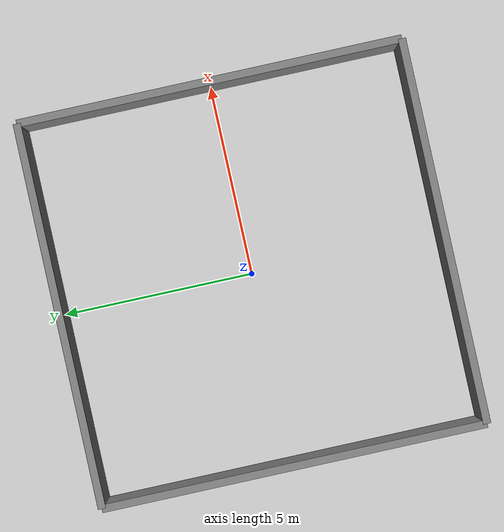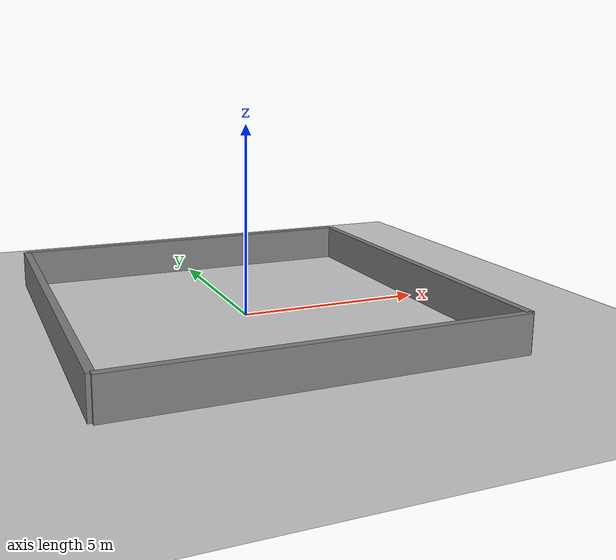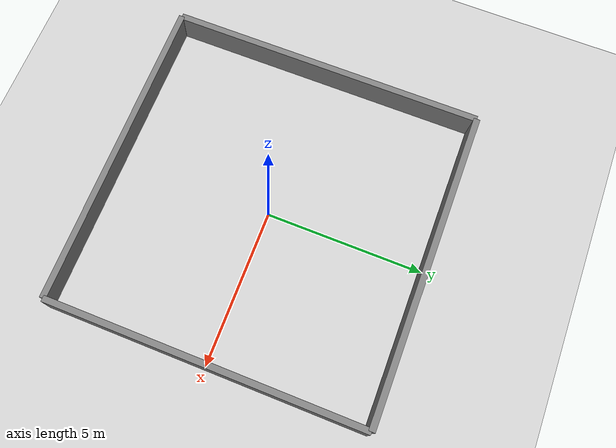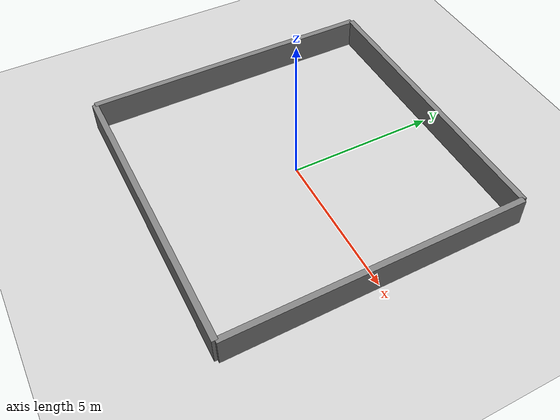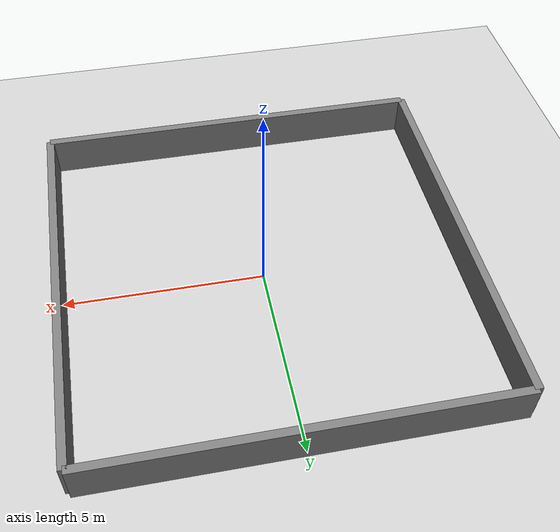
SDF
<?xml version="1.0"?>
<sdf version="1.7">
    <world name="empty_world">
        <!-- Physics engine -->
        <physics name="1ms" type="ignored">
            <max_step_size>0.001</max_step_size>
            <real_time_factor>1.0</real_time_factor>
        </physics>

        <!-- Physics plugin -->
        <plugin
            filename="ignition-gazebo-physics-system"
            name="ignition::gazebo::systems::Physics">
        </plugin>

        <!-- User commands (for spawning entities) -->
        <plugin
            filename="ignition-gazebo-user-commands-system"
            name="ignition::gazebo::systems::UserCommands">
        </plugin>

        <!-- Scene broadcaster (for visualization) -->
        <plugin
            filename="ignition-gazebo-scene-broadcaster-system"
            name="ignition::gazebo::systems::SceneBroadcaster">
        </plugin>

        <!-- Sensors plugin (REQUIRED for LiDAR) -->
        <plugin
            filename="ignition-gazebo-sensors-system"
            name="ignition::gazebo::systems::Sensors">
            <render_engine>ogre</render_engine>
        </plugin>

        <light type="directional" name="sun">
            <cast_shadows>true</cast_shadows>
            <pose>0 0 10 0 0 0</pose>
            <diffuse>0.8 0.8 0.8 1</diffuse>
            <specular>0.2 0.2 0.2 1</specular>
            <attenuation>
                <range>1000</range>
                <constant>0.9</constant>
                <linear>0.01</linear>
                <quadratic>0.001</quadratic>
            </attenuation>
            <direction>-0.5 0.1 -0.9</direction>
        </light>

        <model name="ground_plane">
            <static>true</static>
           <link name="link">
                <collision name="collision">
                    <geometry>
                        <plane>
                            <normal>0 0 1</normal>
                        </plane>
                    </geometry>
                </collision>
                <visual name="visual">
                    <geometry>
                        <plane>
                            <normal>0 0 1</normal>
                            <size>100 100</size>
                        </plane>
                    </geometry>
                    <material>
                        <ambient>0.8 0.8 0.8 1</ambient>
                        <diffuse>0.8 0.8 0.8 1</diffuse>
                        <specular>0.8 0.8 0.8 1</specular>
                    </material>
                </visual>
            </link>
        </model>

        <!-- North wall -->
        <model name="north_wall">
            <static>true</static>
            <pose>0 5 0.5 0 0 0</pose>
            <link name="link">
                <collision name="collision">
                    <geometry>
                        <box>
                            <size>10 0.2 1</size>
                        </box>
                    </geometry>
                </collision>
                <visual name="visual">
                    <geometry>
                        <box>
                            <size>10 0.2 1</size>
                        </box>
                    </geometry>
                    <material>
                        <ambient>0.5 0.5 0.5 1</ambient>
                        <diffuse>0.5 0.5 0.5 1</diffuse>
                    </material>
                </visual>
            </link>
        </model>

        <!-- South wall -->
        <model name="south_wall">
            <static>true</static>
            <pose>0 -5 0.5 0 0 0</pose>
            <link name="link">
                <collision name="collision">
                    <geometry>
                        <box>
                            <size>10 0.2 1</size>
                        </box>
                    </geometry>
                </collision>
                <visual name="visual">
                    <geometry>
                        <box>
                            <size>10 0.2 1</size>
                        </box>
                    </geometry>
                    <material>
                        <ambient>0.5 0.5 0.5 1</ambient>
                        <diffuse>0.5 0.5 0.5 1</diffuse>
                    </material>
                </visual>
            </link>
        </model>

        <!-- East wall -->
        <model name="east_wall">
            <static>true</static>
            <pose>5 0 0.5 0 0 0</pose>
            <link name="link">
                <collision name="collision">
                    <geometry>
                        <box>
                            <size>0.2 10 1</size>
                        </box>
                    </geometry>
                </collision>
                <visual name="visual">
                    <geometry>
                        <box>
                            <size>0.2 10 1</size>
                        </box>
                    </geometry>
                    <material>
                        <ambient>0.5 0.5 0.5 1</ambient>
                        <diffuse>0.5 0.5 0.5 1</diffuse>
                    </material>
                </visual>
            </link>
        </model>

        <!-- West wall -->
        <model name="west_wall">
            <static>true</static>
            <pose>-5 0 0.5 0 0 0</pose>
            <link name="link">
                <collision name="collision">
                    <geometry>
                        <box>
                            <size>0.2 10 1</size>
                        </box>
                    </geometry>
                </collision>
                <visual name="visual">
                    <geometry>
                        <box>
                            <size>0.2 10 1</size>
                        </box>
                    </geometry>
                    <material>
                        <ambient>0.5 0.5 0.5 1</ambient>
                        <diffuse>0.5 0.5 0.5 1</diffuse>
                    </material>
                </visual>
            </link>
        </model>

    </world>
</sdf>
